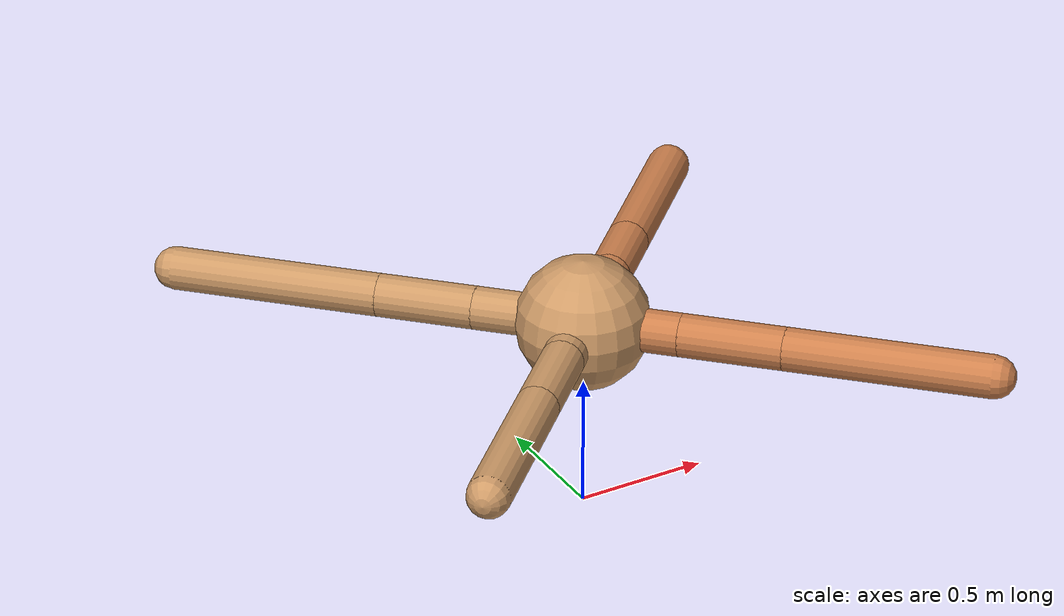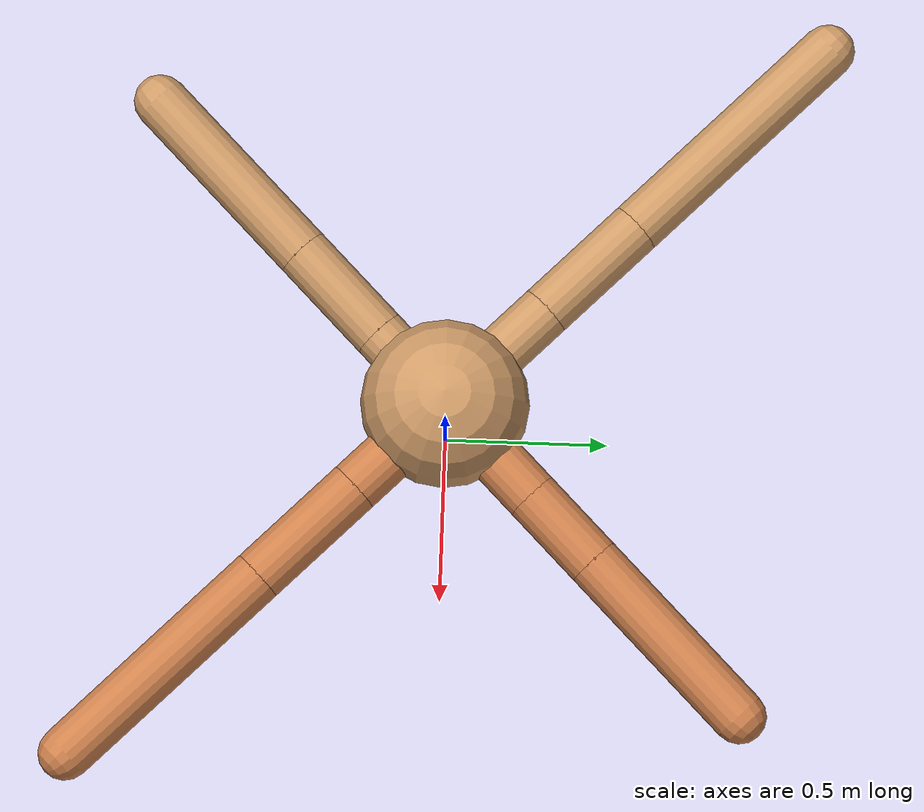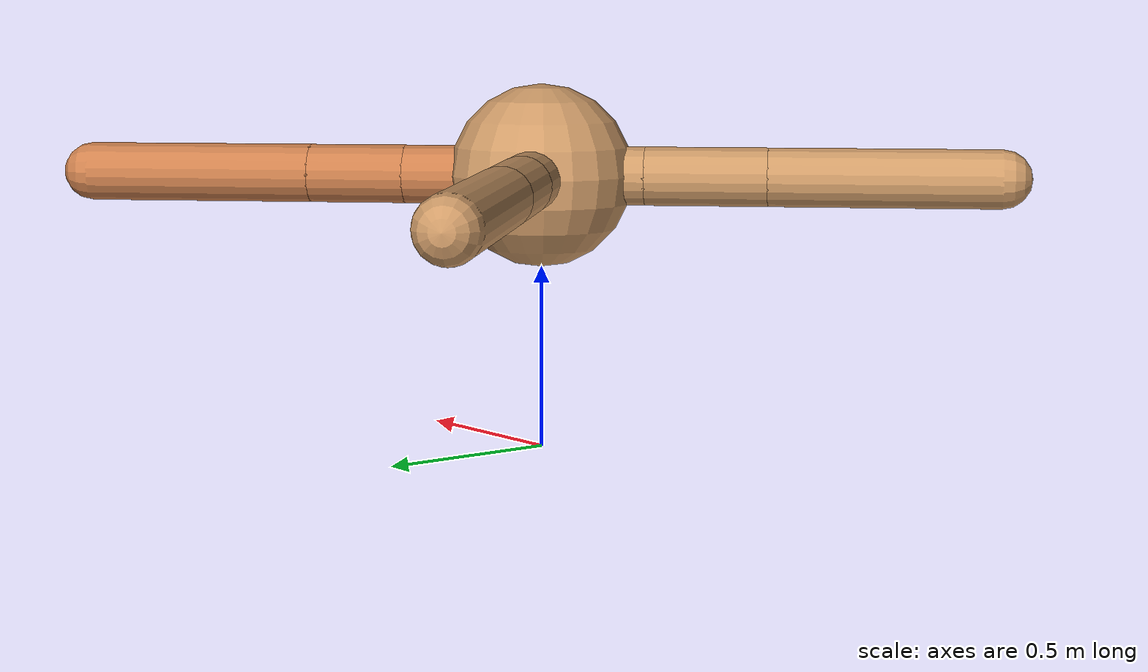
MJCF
<mujoco model="ant">
  <compiler angle="degree" coordinate="local" inertiafromgeom="true" />
  <option integrator="RK4" timestep="0.01" />
  <custom>
    <numeric data="0.0 0.0 0.55 1.0 0.0 0.0 0.0 0.0 1.0 0.0 -1.0 0.0 -1.0 0.0 1.0" name="init_qpos" />
  </custom>
  <default>
    <joint armature="1" damping="1" limited="true" />
    <geom conaffinity="0" condim="3" density="5.0" friction="1.5 0.1 0.1" margin="0.01" rgba="0.8 0.6 0.4 1" />
  </default>
  <worldbody>
    <body name="torso" pos="0 0 0.75">
      <geom name="torso_geom" pos="0 0 0" size="0.25" type="sphere" />

      <body name="front_left_leg" pos="0 0 0">
        <geom fromto="0.0 0.0 0.0 0.26556537896043036 0.26556537896043036 0.0" name="aux_1_geom" size="0.08" type="capsule" rgba=".8 .5 .3 1" />
        <body name="aux_1" pos="0.26556537896043036 0.26556537896043036 0.0">
          <joint axis="0 0 1" name="hip_1" pos="0.0 0.0 0.0" range="-40 40" type="hinge" />
          <geom fromto="0.0 0.0 0.0 0.18711299419802715 0.18711299419802715 0.0" name="left_leg_geom" size="0.08" type="capsule" rgba=".8 .5 .3 1" />
          <body pos="0.18711299419802715 0.18711299419802715 0.0" name="front_left_foot">
            <joint axis="-1 1 0" name="ankle_1" pos="0.0 0.0 0.0" range="30 100" type="hinge" />
            <geom fromto="0.0 0.0 0.0 0.4392713439347727 0.4392713439347727 0.0" name="left_ankle_geom" size="0.08" type="capsule" rgba=".8 .5 .3 1" />
          </body>
        </body>
      </body>
      <body name="front_right_leg" pos="0 0 0">
        <geom fromto="0.0 0.0 0.0 -0.28686912992800906 0.28686912992800906 0.0" name="aux_2_geom" size="0.08" type="capsule" />
        <body name="aux_2" pos="-0.28686912992800906 0.28686912992800906 0.0">
          <joint axis="0 0 1" name="hip_2" pos="0.0 0.0 0.0" range="-40 40" type="hinge" />
          <geom fromto="0.0 0.0 0.0 -0.25850631761389703 0.25850631761389703 0.0" name="right_leg_geom" size="0.08" type="capsule" />
          <body pos="-0.25850631761389703 0.25850631761389703 0.0" name="front_right_foot">
            <joint axis="1 1 0" name="ankle_2" pos="0.0 0.0 0.0" range="-100 -30" type="hinge" />
            <geom fromto="0.0 0.0 0.0 -0.5552575461758938 0.5552575461758938 0.0" name="right_ankle_geom" size="0.08" type="capsule" />
          </body>
        </body>
      </body>
      <body name="left_back_leg" pos="0 0 0">
        <geom fromto="0.0 0.0 0.0 -0.2011149901324032 -0.2011149901324032 0.0" name="aux_3_geom" size="0.08" type="capsule" />
        <body name="aux_3" pos="-0.2011149901324032 -0.2011149901324032 0.0">
          <joint axis="0 0 1" name="hip_3" pos="0.0 0.0 0.0" range="-40 40" type="hinge" />
          <geom fromto="0.0 0.0 0.0 -0.234930583894234 -0.234930583894234 0.0" name="back_leg_geom" size="0.08" type="capsule" />
          <body pos="-0.234930583894234 -0.234930583894234 0.0" name="left_back_foot">
            <joint axis="-1 1 0" name="ankle_3" pos="0.0 0.0 0.0" range="-100 -30" type="hinge" />
            <geom fromto="0.0 0.0 0.0 -0.44094446717495583 -0.44094446717495583 0.0" name="third_ankle_geom" size="0.08" type="capsule" />
          </body>
        </body>
      </body>
      <body name="right_back_leg" pos="0 0 0">
        <geom fromto="0.0 0.0 0.0 0.25769783900727833 -0.25769783900727833 0.0" name="aux_4_geom" size="0.08" type="capsule" rgba=".8 .5 .3 1" />
        <body name="aux_4" pos="0.25769783900727833 -0.25769783900727833 0.0">
          <joint axis="0 0 1" name="hip_4" pos="0.0 0.0 0.0" range="-40 40" type="hinge" />
          <geom fromto="0.0 0.0 0.0 0.27191151909909916 -0.27191151909909916 0.0" name="rightback_leg_geom" size="0.08" type="capsule" rgba=".8 .5 .3 1" />
          <body pos="0.27191151909909916 -0.27191151909909916 0.0" name="right_back_foot">
            <joint axis="1 1 0" name="ankle_4" pos="0.0 0.0 0.0" range="30 100" type="hinge" />
            <geom fromto="0.0 0.0 0.0 0.539375281244259 -0.539375281244259 0.0" name="fourth_ankle_geom" size="0.08" type="capsule" rgba=".8 .5 .3 1" />
          </body>
        </body>
      </body>
    </body>
  </worldbody>
  <actuator>
    <motor ctrllimited="true" ctrlrange="-1.0 1.0" joint="hip_4" gear="150" />
    <motor ctrllimited="true" ctrlrange="-1.0 1.0" joint="ankle_4" gear="150" />
    <motor ctrllimited="true" ctrlrange="-1.0 1.0" joint="hip_1" gear="150" />
    <motor ctrllimited="true" ctrlrange="-1.0 1.0" joint="ankle_1" gear="150" />
    <motor ctrllimited="true" ctrlrange="-1.0 1.0" joint="hip_2" gear="150" />
    <motor ctrllimited="true" ctrlrange="-1.0 1.0" joint="ankle_2" gear="150" />
    <motor ctrllimited="true" ctrlrange="-1.0 1.0" joint="hip_3" gear="150" />
    <motor ctrllimited="true" ctrlrange="-1.0 1.0" joint="ankle_3" gear="150" />
  </actuator>
</mujoco>
